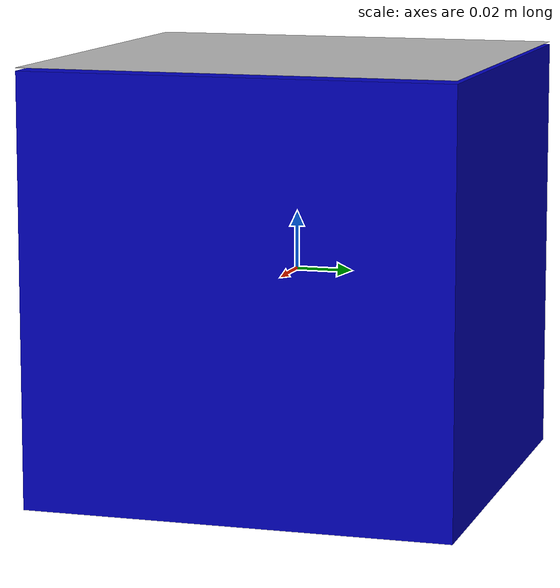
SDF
<?xml version="1.0"?>
<sdf version="1.6">
  <model name="aruco_marker">
    <model name="aruco_marker_tag">
      <link name="tag">
        <inertial>
          <mass>0.001</mass>
          <inertia>
            <ixx>3.7499999999999997e-06</ixx>
            <ixy>0.0</ixy>
            <ixz>0.0</ixz>
            <iyy>1.8750008333333333e-06</iyy>
            <iyz>0.0</iyz>
            <izz>1.8750008333333333e-06</izz>
          </inertia>
        </inertial>
        <visual name="front_visual">
          <pose>0 0 0.076 0 1.57 0</pose>
          <geometry>
            <box>
              <size>0.0001 0.15 0.15</size>
            </box>
          </geometry>
          <material>
            <script>
              <uri>model://aruco_marker/materials/scripts</uri>
              <uri>model://aruco_marker/materials/textures</uri>
              <name>Marker02</name>
            </script>
          </material>
        </visual>
        <!-- Hide the marker from the back -->
        <visual name="rear_visual">
          <pose>-0.00005 0 0 0 0 0</pose>
          <geometry>
            <box>
              <size>0.0001 0.15 0.15</size>
            </box>
          </geometry>
        </visual>
        <collision name="collision">
          <pose>0 0 0 0 0 0</pose>
          <geometry>
            <box>
              <size>0.0001 0.15 0.15</size>
            </box>
          </geometry>
        </collision>
      </link>
    </model>

    <model name="aruco_marker_box">
      <link name="ar_box">
        <pose>0 0 0 0 0 0</pose>
        <inertial>
          <mass>0.1</mass>
          <inertia>            <!-- inertias are tricky to compute -->
            <!-- http://gazebosim.org/tutorials?tut=inertia&cat=build_robot -->
            <ixx>0.000015</ixx>            <!-- for a box: ixx = 0.083 * mass * (y*y + z*z) -->
            <ixy>0.0</ixy>            <!-- for a box: ixy = 0 -->
            <ixz>0.0</ixz>            <!-- for a box: ixz = 0 -->
            <iyy>0.000015</iyy>            <!-- for a box: iyy = 0.083 * mass * (x*x + z*z) -->
            <iyz>0.0</iyz>            <!-- for a box: iyz = 0 -->
            <izz>0.000015</izz>            <!-- for a box: izz = 0.083 * mass * (x*x + y*y) -->
          </inertia>
        </inertial>
        <collision name="collision">
          <geometry>
            <box>
              <size>0.15 0.15 0.15</size>
            </box>
          </geometry>
          <surface>
            <friction>
              <ode>
                <mu>0.9</mu>
                <mu2>0.9</mu2>
              </ode>
            </friction>
          </surface>
        </collision>
        <visual name="visual">
          <geometry>
            <box>
              <size>0.15 0.15 0.15</size>
            </box>
          </geometry>
          <material>
            <ambient>0 0 0.75 1</ambient>
            <diffuse>0 0 0.75 1</diffuse>
            <specular>0.4 0.4 0.4 64</specular>
            <emissive>0.1 0 0.1 1</emissive>
          </material>
        </visual>
      </link>
    </model>

    <joint name="ar_tag" type="revolute">
      <parent>aruco_marker_box::ar_box</parent>
      <child>aruco_marker_tag::tag</child>
      <axis>
        <xyz>0 0 0</xyz>
        <limit>
          <upper>0</upper>
          <lower>0</lower>
        </limit>
      </axis>
    </joint>
  </model>
</sdf>
